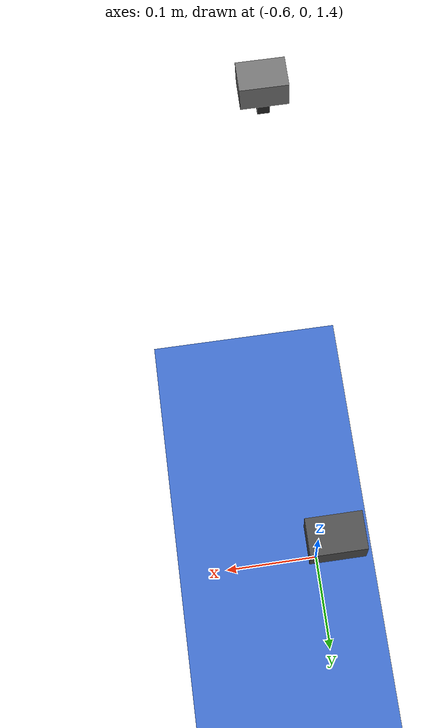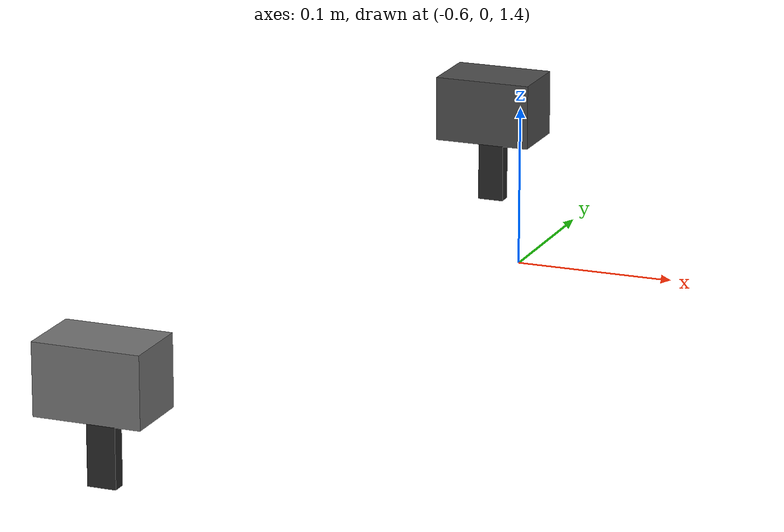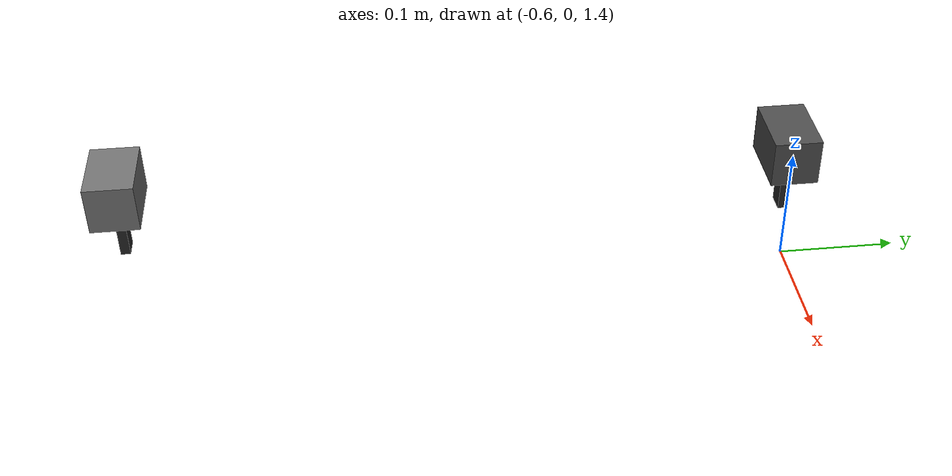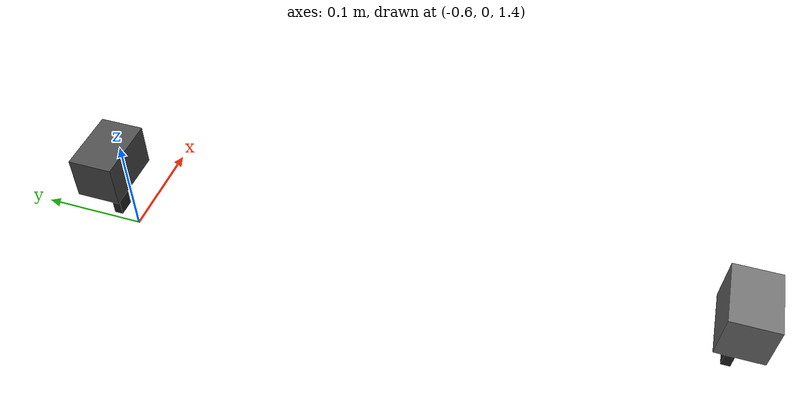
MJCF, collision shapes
<mujoco model="dual_gripper_rect_yixuan_h03">
  <!-- gen_dual_gripper_rect_yixuan_h03_scene.py：20×10 布，台面 12×6m 不变 -->
  <compiler angle="degree" autolimits="true" meshdir="meshes"/>
  <option timestep="0.001" gravity="0 0 -9.81" integrator="implicitfast" solver="CG"
          cone="elliptic" impratio="12" tolerance="1e-7" iterations="200" noslip_iterations="2"/>
  <default>
    <joint damping="0.30" armature="0.001"/>
    <geom solref="0.025 1.2" solimp="0.94 0.997 0.0008" condim="3" friction="0.45 0.02 0.005"/>
    <default class="finger_geom">
      <geom condim="4" friction="1.2 0.05 0.01" rgba="0.15 0.15 0.15 1"/>
    </default>
  </default>

  <asset>
    <mesh name="yixuan_palm" file="gripper_palm.obj"/>
    <mesh name="yixuan_finger" file="gripper_finger.obj"/>
  </asset>

  <visual>
    <headlight diffuse="0.8 0.8 0.8" ambient="0.2 0.2 0.2" specular="0.25 0.25 0.25"/>
    <rgba haze="0.15 0.25 0.35 1"/>
  </visual>

  <worldbody>
    <light pos="2.0 -3.0 4.0" dir="-0.3 0.3 -1"/>
    <camera name="main" pos="0.000000 -7.000000 4.000000" xyaxes="0.0000 0.8841 -0.4673 0.0000 -0.0000 1.0000"/>

    <body mocap="true" name="mocap_gripper_l_palm" pos="-0.618000 -0.000000 1.500000" quat="1 0 0 0"/>
    <body mocap="true" name="mocap_gripper_r_palm" pos="-0.618000 -0.556200 1.500000" quat="1 0 0 0"/>

    <body name="base" pos="0.000000 -0.000000 0.150000">
      <geom name="base_geom" type="box" size="6.000000 3.000000 0.150000" rgba="0.24 0.42 0.78 1"/>
      <site name="base_anchor_0" pos="3.873951 3.873951 3.873951" size="0.004" rgba="1 1 1 0.01" group="4"/>
      <site name="base_anchor_1" pos="3.873951 -3.873951 -3.873951" size="0.004" rgba="1 1 1 0.01" group="4"/>
      <site name="base_anchor_2" pos="-3.873951 3.873951 -3.873951" size="0.004" rgba="1 1 1 0.01" group="4"/>
      <site name="base_anchor_3" pos="-3.873951 -3.873951 3.873951" size="0.004" rgba="1 1 1 0.01" group="4"/>
    </body>

    <body name="gripper_l_palm" pos="-0.618000 -0.000000 1.500000">
      <freejoint name="gripper_l_palm_free"/>
      <geom name="gripper_l_palm_geom" type="box" size="0.030000 0.020000 0.020000" mass="0.001"
            rgba="0.30 0.30 0.30 0" friction="1.0 0.04 0.01"/>
      <geom name="gripper_l_palm_visual" type="mesh" mesh="yixuan_palm"
            euler="90 0 0" contype="0" conaffinity="0" group="1"
            rgba="0.32 0.32 0.35 1"/>
      <site name="gripper_l_palm_anchor_0" pos="0.023805 0.023805 0.023805" size="0.004" rgba="1 1 1 0.01" group="4"/>
      <site name="gripper_l_palm_anchor_1" pos="0.023805 -0.023805 -0.023805" size="0.004" rgba="1 1 1 0.01" group="4"/>
      <site name="gripper_l_palm_anchor_2" pos="-0.023805 0.023805 -0.023805" size="0.004" rgba="1 1 1 0.01" group="4"/>
      <site name="gripper_l_palm_anchor_3" pos="-0.023805 -0.023805 0.023805" size="0.004" rgba="1 1 1 0.01" group="4"/>
      <body name="gripper_l_finger1" pos="0.000000 -0.000000 -0.020000" gravcomp="1">
        <joint name="gripper_l_finger1_hinge" type="hinge" axis="0 1 0" range="-60 -2" ref="0"
               damping="2.5" armature="0.005"/>
        <geom name="gripper_l_finger1_geom" class="finger_geom" type="box" size="0.008000 0.004000 0.020000" pos="0.000000 -0.000000 -0.020000" mass="0.05"/>
        <geom name="gripper_l_finger1_visual" type="mesh" mesh="yixuan_finger" pos="0.000000 -0.000000 -0.020000"
              euler="90 0 0" contype="0" conaffinity="0" group="1"
              rgba="0.22 0.22 0.24 0.85"/>
      <site name="gripper_l_finger1_anchor_0" pos="0.012649 0.012649 0.012649" size="0.004" rgba="1 1 1 0.01" group="4"/>
      <site name="gripper_l_finger1_anchor_1" pos="0.012649 -0.012649 -0.012649" size="0.004" rgba="1 1 1 0.01" group="4"/>
      <site name="gripper_l_finger1_anchor_2" pos="-0.012649 0.012649 -0.012649" size="0.004" rgba="1 1 1 0.01" group="4"/>
      <site name="gripper_l_finger1_anchor_3" pos="-0.012649 -0.012649 0.012649" size="0.004" rgba="1 1 1 0.01" group="4"/>
      </body>
      <body name="gripper_l_finger2" pos="0.000000 -0.000000 -0.020000" gravcomp="1">
        <joint name="gripper_l_finger2_hinge" type="hinge" axis="0 1 0" range="2 60" ref="0"
               damping="2.5" armature="0.005"/>
        <geom name="gripper_l_finger2_geom" class="finger_geom" type="box" size="0.008000 0.004000 0.020000" pos="0.000000 -0.000000 -0.020000" mass="0.05"/>
        <geom name="gripper_l_finger2_visual" type="mesh" mesh="yixuan_finger" pos="0.000000 -0.000000 -0.020000"
              euler="90 0 0" contype="0" conaffinity="0" group="1"
              rgba="0.22 0.22 0.24 0.85"/>
      <site name="gripper_l_finger2_anchor_0" pos="0.012649 0.012649 0.012649" size="0.004" rgba="1 1 1 0.01" group="4"/>
      <site name="gripper_l_finger2_anchor_1" pos="0.012649 -0.012649 -0.012649" size="0.004" rgba="1 1 1 0.01" group="4"/>
      <site name="gripper_l_finger2_anchor_2" pos="-0.012649 0.012649 -0.012649" size="0.004" rgba="1 1 1 0.01" group="4"/>
      <site name="gripper_l_finger2_anchor_3" pos="-0.012649 -0.012649 0.012649" size="0.004" rgba="1 1 1 0.01" group="4"/>
      </body>
    </body>

    <body name="gripper_r_palm" pos="-0.618000 -0.556200 1.500000">
      <freejoint name="gripper_r_palm_free"/>
      <geom name="gripper_r_palm_geom" type="box" size="0.030000 0.020000 0.020000" mass="0.001"
            rgba="0.45 0.45 0.45 0" friction="1.0 0.04 0.01"/>
      <geom name="gripper_r_palm_visual" type="mesh" mesh="yixuan_palm"
            euler="90 0 0" contype="0" conaffinity="0" group="1"
            rgba="0.42 0.42 0.45 1"/>
      <site name="gripper_r_palm_anchor_0" pos="0.023805 0.023805 0.023805" size="0.004" rgba="1 1 1 0.01" group="4"/>
      <site name="gripper_r_palm_anchor_1" pos="0.023805 -0.023805 -0.023805" size="0.004" rgba="1 1 1 0.01" group="4"/>
      <site name="gripper_r_palm_anchor_2" pos="-0.023805 0.023805 -0.023805" size="0.004" rgba="1 1 1 0.01" group="4"/>
      <site name="gripper_r_palm_anchor_3" pos="-0.023805 -0.023805 0.023805" size="0.004" rgba="1 1 1 0.01" group="4"/>
      <body name="gripper_r_finger1" pos="0.000000 -0.000000 -0.020000" gravcomp="1">
        <joint name="gripper_r_finger1_hinge" type="hinge" axis="0 1 0" range="-60 -2" ref="0"
               damping="2.5" armature="0.005"/>
        <geom name="gripper_r_finger1_geom" class="finger_geom" type="box" size="0.008000 0.004000 0.020000" pos="0.000000 -0.000000 -0.020000" mass="0.05"/>
        <geom name="gripper_r_finger1_visual" type="mesh" mesh="yixuan_finger" pos="0.000000 -0.000000 -0.020000"
              euler="90 0 0" contype="0" conaffinity="0" group="1"
              rgba="0.22 0.22 0.24 0.85"/>
      <site name="gripper_r_finger1_anchor_0" pos="0.012649 0.012649 0.012649" size="0.004" rgba="1 1 1 0.01" group="4"/>
      <site name="gripper_r_finger1_anchor_1" pos="0.012649 -0.012649 -0.012649" size="0.004" rgba="1 1 1 0.01" group="4"/>
      <site name="gripper_r_finger1_anchor_2" pos="-0.012649 0.012649 -0.012649" size="0.004" rgba="1 1 1 0.01" group="4"/>
      <site name="gripper_r_finger1_anchor_3" pos="-0.012649 -0.012649 0.012649" size="0.004" rgba="1 1 1 0.01" group="4"/>
      </body>
      <body name="gripper_r_finger2" pos="0.000000 -0.000000 -0.020000" gravcomp="1">
        <joint name="gripper_r_finger2_hinge" type="hinge" axis="0 1 0" range="2 60" ref="0"
               damping="2.5" armature="0.005"/>
        <geom name="gripper_r_finger2_geom" class="finger_geom" type="box" size="0.008000 0.004000 0.020000" pos="0.000000 -0.000000 -0.020000" mass="0.05"/>
        <geom name="gripper_r_finger2_visual" type="mesh" mesh="yixuan_finger" pos="0.000000 -0.000000 -0.020000"
              euler="90 0 0" contype="0" conaffinity="0" group="1"
              rgba="0.22 0.22 0.24 0.85"/>
      <site name="gripper_r_finger2_anchor_0" pos="0.012649 0.012649 0.012649" size="0.004" rgba="1 1 1 0.01" group="4"/>
      <site name="gripper_r_finger2_anchor_1" pos="0.012649 -0.012649 -0.012649" size="0.004" rgba="1 1 1 0.01" group="4"/>
      <site name="gripper_r_finger2_anchor_2" pos="-0.012649 0.012649 -0.012649" size="0.004" rgba="1 1 1 0.01" group="4"/>
      <site name="gripper_r_finger2_anchor_3" pos="-0.012649 -0.012649 0.012649" size="0.004" rgba="1 1 1 0.01" group="4"/>
      </body>
    </body>
  </worldbody>

  <equality>
    <weld name="weld_l_palm_mocap" body1="mocap_gripper_l_palm" body2="gripper_l_palm"
          solref="0.02 1" solimp="0.9 0.95 0.001"/>
    <weld name="weld_r_palm_mocap" body1="mocap_gripper_r_palm" body2="gripper_r_palm"
          solref="0.02 1" solimp="0.9 0.95 0.001"/>
  </equality>

  <actuator>
    <position name="gripper_l_finger1_ctrl" joint="gripper_l_finger1_hinge" kp="200" kv="15"
              ctrlrange="-60 -2" forcelimited="true" forcerange="-30 30"/>
    <position name="gripper_l_finger2_ctrl" joint="gripper_l_finger2_hinge" kp="200" kv="15"
              ctrlrange="2 60" forcelimited="true" forcerange="-30 30"/>
    <position name="gripper_r_finger1_ctrl" joint="gripper_r_finger1_hinge" kp="200" kv="15"
              ctrlrange="-60 -2" forcelimited="true" forcerange="-30 30"/>
    <position name="gripper_r_finger2_ctrl" joint="gripper_r_finger2_hinge" kp="200" kv="15"
              ctrlrange="2 60" forcelimited="true" forcerange="-30 30"/>
  </actuator>
</mujoco>
